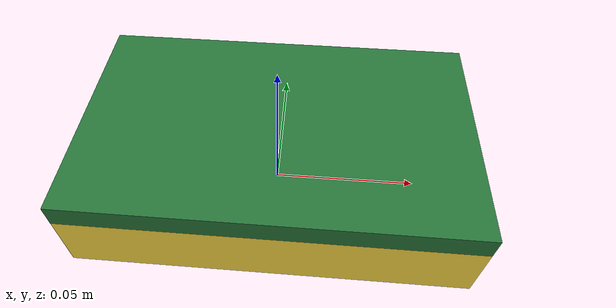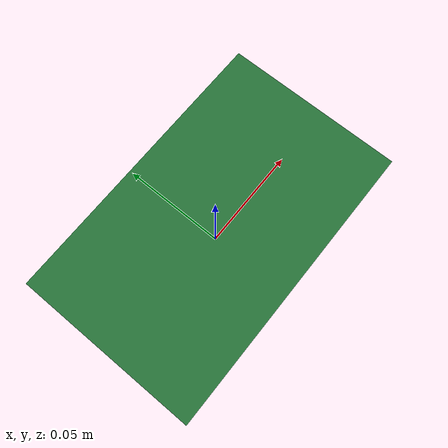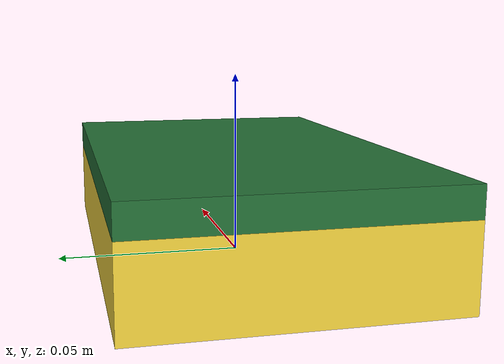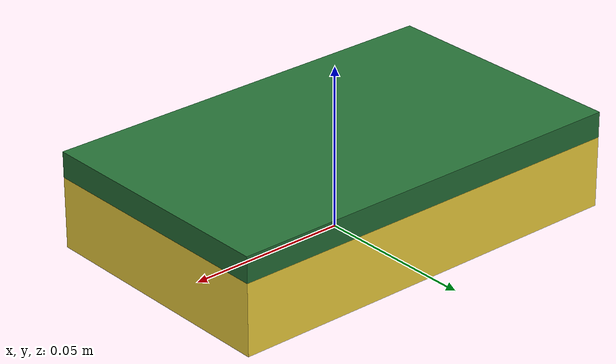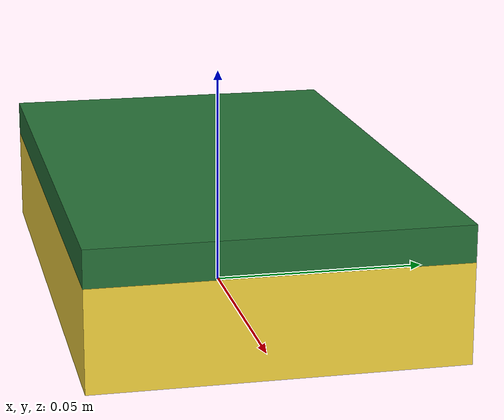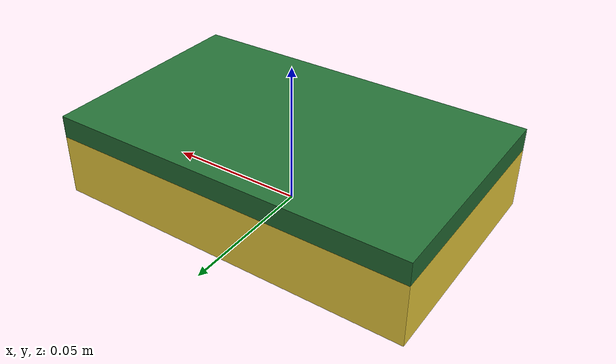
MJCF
<mujoco model="sponge">

  <default>
    <default class="sponge">
      <geom condim="4" friction="1.6 0.08 0.002" solref="0.02 1"/>
    </default>
  </default>

  <worldbody>
    <body name="root">
      <freejoint name="free"/>
      <geom name="foam" class="sponge" type="box"
            pos="+0.00000 +0.00000 +0.01100"
            size="+0.06500 +0.04000 +0.01100"
            mass="0.012" rgba="0.98 0.85 0.25 1"/>
      <geom name="pad" class="sponge" type="box"
            pos="+0.00000 +0.00000 +0.02600"
            size="+0.06500 +0.04000 +0.00400"
            mass="0.005" rgba="0.15 0.45 0.22 1"/>
    </body>
  </worldbody>
</mujoco>
